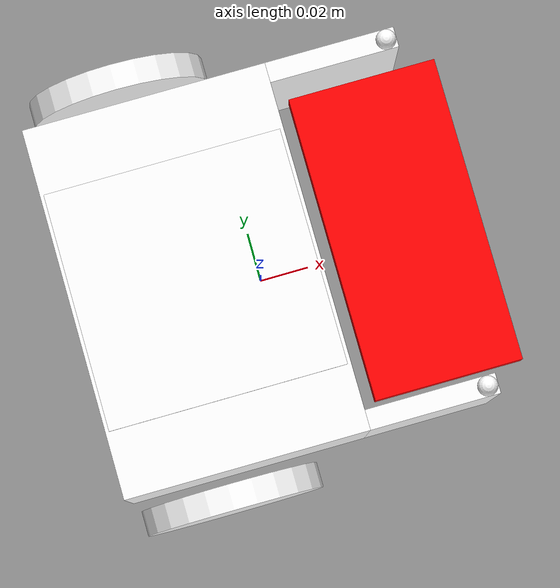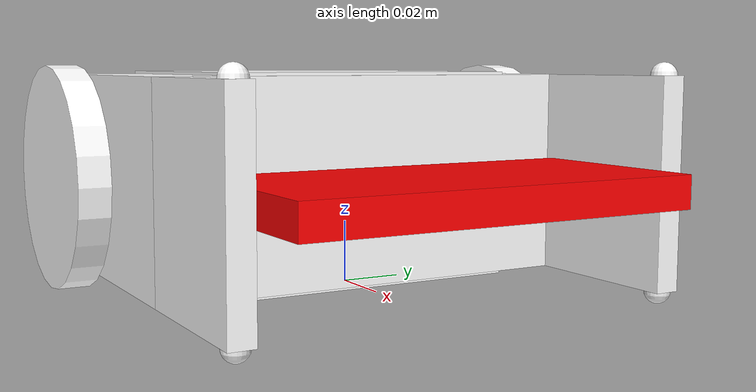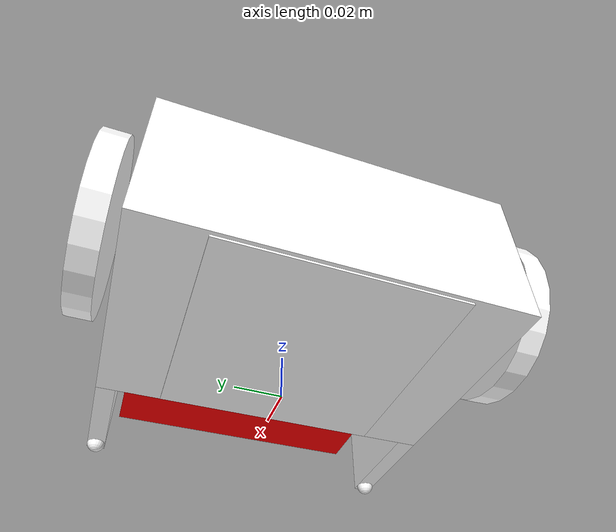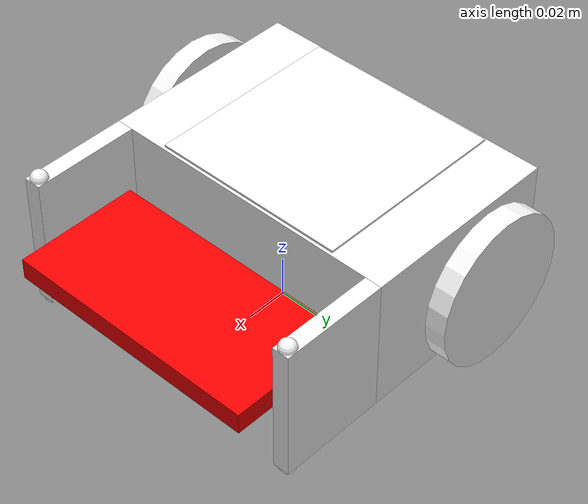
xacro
<?xml version="1.0"?>

<robot name="my_robot" xmlns:xacro="http://www.ros.org/wiki/xacro">

    <!--   Geometry and constants   -->

    <!-- Pi -->
    <xacro:property name="pi_const" value="3.14159265" />

    <!-- Body Dimensions -->
    <xacro:property name="a" value="0.0969" />
    <xacro:property name="b" value="0.065" />
    <xacro:property name="c" value="0.147" />
    <xacro:property name="baseframe_offset_y" value="-0.02575" />

    <!-- Wheel and caster radius -->
    <xacro:property name="r" value="0.0355" />

    <!-- Wheel width -->
    <xacro:property name="d" value="0.01" />

    <!-- Wheel Offset to chassis in Y axis -->
    <xacro:property name="wheel_offset_x" value="-0.00925" />
    <xacro:property name="wheel_offset_y" value="0.01" />

    <!-- AprilTag properties -->
    <xacro:property name="tag_size" value="0.094" />
    <xacro:property name="tag_thickness" value="0.001" />
    <xacro:property name="tag_mass" value="0.01" />
    <xacro:property name="tag_offset_y" value="0.0" />

    <!-- Weapon properties -->
    <xacro:property name="weapon_length" value="0.060" />
    <xacro:property name="weapon_width" value="0.124" />
    <xacro:property name="weapon_height" value="0.010" />
    <xacro:property name="weapon_offset_x" value="0.08495" />
    <xacro:property name="weapon_mass" value="0.1" />       <!-- Mass of weapon (kg) -->
    <xacro:property name="weapon_density" value="1430.0" /> <!-- Material density -->

    <xacro:property name="s1" value="${r}" />
    <xacro:property name="s2" value="${wheel_offset_x}" />
    <xacro:property name="s4" value="${c/2.0+wheel_offset_y}" />

    <!-- Upright support box dimensions (independently definable) -->
    <xacro:property name="support_width" value="0.0515" />      <!-- Width in X direction -->
    <xacro:property name="support_depth" value="0.008" />     <!-- Depth in Y direction -->
    <xacro:property name="support_height" value="0.065" />    <!-- Height in Z direction -->

    <!-- Caster ball properties -->
    <xacro:property name="caster_radius" value="${support_depth/2}" />    <!-- Radius of the ball casters -->
    <xacro:property name="caster_mass" value="0.005" />      <!-- Mass of each caster ball -->
    <xacro:property name="caster_offset" value="${support_height/2}" /> <!-- Position offset from box center -->

    <!--      Mass and inertia      -->

    <!-- Material Density -->
    <xacro:property name="d1" value="1430.0" />
    <xacro:property name="d2" value="1430.0" />
    <xacro:property name="d3" value="1430.0" />
    <xacro:property name="d4" value="1430.0" />  <!-- Density for caster balls -->
    <xacro:property name="d5" value="${weapon_density}" /> <!-- Density for weapon -->

    <!-- Mass -->
    <xacro:property name="m1" value="${d1*a*b*c}" />
    <xacro:property name="m2" value="${d2*pi_const*r*r*d}" />
    <xacro:property name="m3" value="${d3*support_width*support_depth*support_height}" />
    <xacro:property name="m4" value="${d4 * (4.0/3.0) * pi_const * caster_radius * caster_radius * caster_radius}" /> <!-- Mass of caster ball -->
    <xacro:property name="m5" value="${d5*weapon_length*weapon_width*weapon_height}" /> <!-- Mass of weapon -->

    <!-- Inertia -->
    <xacro:property name="Ix_body" value="${(1.0/12.0)*m1*(b*b+c*c)}" />
    <xacro:property name="Iy_body" value="${(1.0/12.0)*m1*(a*a+b*b)}" />
    <xacro:property name="Iz_body" value="${(1.0/12.0)*m1*(a*a+c*c)}" />
    <xacro:property name="Iz_wheel" value="${0.5*m2*r*r}" />
    <xacro:property name="I_wheel" value="${(1.0/12.0)*m2*(3.0*r*r+d*d)}" />

    <!-- Inertia for box support -->
    <xacro:property name="I_support_x" value="${(1.0/12.0)*m3*(support_depth*support_depth + support_height*support_height)}" />
    <xacro:property name="I_support_y" value="${(1.0/12.0)*m3*(support_width*support_width + support_height*support_height)}" />
    <xacro:property name="I_support_z" value="${(1.0/12.0)*m3*(support_width*support_width + support_depth*support_depth)}" />

    <!-- Inertia for caster ball (solid sphere) -->
    <xacro:property name="I_caster" value="${(2.0/5.0)*m4*caster_radius*caster_radius}" />

    <!-- Inertia for weapon (rectangular box) -->
    <xacro:property name="Ix_weapon" value="${(1.0/12.0)*m5*(weapon_width*weapon_width + weapon_height*weapon_height)}" />
    <xacro:property name="Iy_weapon" value="${(1.0/12.0)*m5*(weapon_length*weapon_length + weapon_height*weapon_height)}" />
    <xacro:property name="Iz_weapon" value="${(1.0/12.0)*m5*(weapon_length*weapon_length + weapon_width*weapon_width)}" />

    <!-- Complete inertia macros -->
    <xacro:macro name="inertia_body">
        <inertial>
            <origin rpy="0 0 0" xyz="0 0 ${s1}"/>
            <mass value="${m1}"/>
            <inertia ixx="${Ix_body}" ixy="0.0" ixz="0.0" iyy="${Iy_body}" iyz="0.0" izz="${Iz_body}" />
        </inertial>
    </xacro:macro>

    <xacro:macro name="inertia_wheel">
        <inertial>
            <origin rpy="${pi_const/2.0} 0 0" xyz="0 0 0"/>
            <mass value="${m2}"/>
            <inertia ixx="${I_wheel}" ixy="0.0" ixz="0.0" iyy="${I_wheel}" iyz="0.0" izz="${Iz_wheel}" />
        </inertial>
    </xacro:macro>

    <xacro:macro name="inertia_support">
        <inertial>
            <origin rpy="0 0 0" xyz="0 0 0"/>
            <mass value="${m3}"/>
            <inertia ixx="${I_support_x}" ixy="0.0" ixz="0.0" iyy="${I_support_y}" iyz="0.0" izz="${I_support_z}" />
        </inertial>
    </xacro:macro>

    <xacro:macro name="inertia_caster">
        <inertial>
            <origin rpy="0 0 0" xyz="0 0 0"/>
            <mass value="${m4}"/>
            <inertia ixx="${I_caster}" ixy="0.0" ixz="0.0" iyy="${I_caster}" iyz="0.0" izz="${I_caster}" />
        </inertial>
    </xacro:macro>

    <xacro:macro name="inertia_weapon">
        <inertial>
            <origin rpy="0 0 0" xyz="0 0 0"/>
            <mass value="${m5}"/>
            <inertia ixx="${Ix_weapon}" ixy="0.0" ixz="0.0" iyy="${Iy_weapon}" iyz="0.0" izz="${Iz_weapon}" />
        </inertial>
    </xacro:macro>

    <xacro:macro name="inertia_tag">
        <inertial>
            <origin rpy="0 0 0" xyz="0 0 0"/>
            <mass value="${tag_mass}"/>
            <inertia ixx="${(1.0/12.0)*tag_mass*(tag_size*tag_size + tag_thickness*tag_thickness)}"
                     ixy="0.0" ixz="0.0"
                     iyy="${(1.0/12.0)*tag_mass*(tag_size*tag_size + tag_thickness*tag_thickness)}"
                     iyz="0.0"
                     izz="${(1.0/12.0)*tag_mass*(tag_size*tag_size + tag_size*tag_size)}" />
        </inertial>
    </xacro:macro>

    <!-- Include gazebo file -->
    <xacro:include filename="$(find robot_description)/urdf/gazebo/robot.gazebo.xacro" />

    <!-- Links and joints -->
    <link name="base_footprint"> </link>
    <joint name="body_link_joint" type="fixed">
        <parent link="base_footprint"/>
        <child link="body_link"/>
        <origin xyz="${baseframe_offset_y} 0 0" rpy="0 0 0"/>
    </joint>

    <link name="body_link">
        <visual>
            <geometry><box size="${a} ${c} ${b}" /></geometry>
            <origin rpy="0 0 0" xyz="0 0 ${s1}"/>
            <material name="White"><color rgba="1 1 1 1"/></material>
        </visual>
        <collision>
            <geometry><box size="${a} ${c} ${b}" /></geometry>
            <origin rpy="0 0 0" xyz="0 0 ${s1}"/>
        </collision>
        <xacro:inertia_body/>
    </link>

    <!-- Weapon Link -->
    <joint name="weapon_joint" type="fixed">
        <parent link="body_link"/>
        <child link="weapon_link"/>
        <origin xyz="${weapon_offset_x} 0 ${s1}" rpy="0 0 0"/>
    </joint>
    <link name="weapon_link">
        <visual>
            <origin rpy="0 0 0" xyz="0 0 0"/>
            <geometry><box size="${weapon_length} ${weapon_width} ${weapon_height}"/></geometry>
            <material name="Red"><color rgba="1 0 0 1"/></material>
        </visual>
        <collision>
            <origin rpy="0 0 0" xyz="0 0 0"/>
            <geometry><box size="${weapon_length} ${weapon_width} ${weapon_height}"/></geometry>
        </collision>
        <xacro:inertia_weapon/>
    </link>

    <!-- Top AprilTag -->
    <joint name="top_tag_joint" type="fixed">
        <parent link="body_link"/>
        <child link="top_apriltag_link"/>
        <origin xyz="${tag_offset_y} 0 ${s1 + b/2 + tag_thickness/2}" rpy="0 0 0"/>
    </joint>
    <link name="top_apriltag_link">
        <visual>
            <origin rpy="0 0 0" xyz="0 0 0"/>
            <geometry><box size="${tag_size} ${tag_size} ${tag_thickness}"/></geometry>
            <material name="White"><color rgba="1 1 1 1"/></material>
        </visual>
        <collision>
            <origin rpy="0 0 0" xyz="0 0 0"/>
            <geometry><box size="${tag_size} ${tag_size} ${tag_thickness}"/></geometry>
        </collision>
        <xacro:inertia_tag/>
    </link>

    <!-- Top AprilTag Optical Frame -->
    <joint name="top_tag_optical_joint" type="fixed">
        <parent link="top_apriltag_link"/>
        <child link="top_apriltag_optical"/>
        <origin xyz="0 0 0" rpy="0 ${pi_const} ${pi_const/2}"/>
    </joint>
    <link name="top_apriltag_optical"/>

    <!-- Bottom AprilTag -->
    <joint name="bottom_tag_joint" type="fixed">
        <parent link="body_link"/>
        <child link="bottom_apriltag_link"/>
        <origin xyz="${tag_offset_y} 0 ${s1 - b/2 - tag_thickness/2}" rpy="${pi_const} 0 0"/>
    </joint>
    <link name="bottom_apriltag_link">
        <visual>
            <origin rpy="0 0 0" xyz="0 0 0"/>
            <geometry><box size="${tag_size} ${tag_size} ${tag_thickness}"/></geometry>
            <material name="White"><color rgba="1 1 1 1"/></material>
        </visual>
        <collision>
            <origin rpy="0 0 0" xyz="0 0 0"/>
            <geometry><box size="${tag_size} ${tag_size} ${tag_thickness}"/></geometry>
        </collision>
        <xacro:inertia_tag/>
    </link>

    <!-- Bottom AprilTag Optical Frame -->
    <joint name="bottom_tag_optical_joint" type="fixed">
        <parent link="bottom_apriltag_link"/>
        <child link="bottom_apriltag_optical"/>
        <origin xyz="0 0 0" rpy="0 0 ${pi_const/2}"/>
    </joint>
    <link name="bottom_apriltag_optical"/>

    <!-- Wheels -->
    <joint name="right_wheel_joint" type="continuous">
        <parent link="body_link"/>
        <child link="right_wheel_link"/>
        <origin xyz="${s2} ${-s4} ${r}" rpy="0 0 0"/>
        <axis xyz="0 1 0"/>
        <limit effort="50000" velocity="10"/>
        <dynamics damping="1.0" friction="1.0"/>
    </joint>
    <link name="right_wheel_link">
        <visual>
            <origin rpy="${pi_const/2} 0 0" xyz="0 0 0"/>
            <geometry><cylinder length="${d}" radius="${r}"/></geometry>
            <material name="White"><color rgba="1 1 1 1"/></material>
        </visual>
        <collision>
            <origin rpy="${pi_const/2} 0 0" xyz="0 0 0"/>
            <geometry><cylinder length="${d}" radius="${r}"/></geometry>
        </collision>
        <xacro:inertia_wheel/>
    </link>

    <joint name="left_wheel_joint" type="continuous">
        <parent link="body_link"/>
        <child link="left_wheel_link"/>
        <origin xyz="${s2} ${s4} ${r}" rpy="0 0 0"/>
        <axis xyz="0 1 0"/>
        <limit effort="50000" velocity="10"/>
        <dynamics damping="1.0" friction="1.0"/>
    </joint>
    <link name="left_wheel_link">
        <visual>
            <origin rpy="${pi_const/2} 0 0" xyz="0 0 0"/>
            <geometry><cylinder length="${d}" radius="${r}"/></geometry>
            <material name="White"><color rgba="1 1 1 1"/></material>
        </visual>
        <collision>
            <origin rpy="${pi_const/2} 0 0" xyz="0 0 0"/>
            <geometry><cylinder length="${d}" radius="${r}"/></geometry>
        </collision>
        <xacro:inertia_wheel/>
    </link>

    <!-- Two upright boxes with independently definable top/bottom casters -->
    <xacro:macro name="upright_with_casters" params="name y_offset">
        <!-- Upright box -->
        <joint name="${name}_joint" type="fixed">
            <parent link="body_link"/>
            <child link="${name}_link"/>
            <origin xyz="${a/2 + support_width/2} ${y_offset} ${r}" rpy="0 0 0"/>
        </joint>
        <link name="${name}_link">
            <visual>
                <origin rpy="0 0 0"/>
                <geometry><box size="${support_width} ${support_depth} ${support_height}"/></geometry>
                <material name="White"><color rgba="1 1 1 1"/></material>
            </visual>
            <collision>
                <origin rpy="0 0 0"/>
                <geometry><box size="${support_width} ${support_depth} ${support_height}"/></geometry>
            </collision>
            <xacro:inertia_support/>
        </link>

        <!-- Top caster ball -->
        <joint name="${name}_top_caster_joint" type="fixed">
            <parent link="${name}_link"/>
            <child link="${name}_top_caster_link"/>
            <origin xyz="${support_width/2-caster_radius} 0 ${caster_offset}" rpy="0 0 0"/>
        </joint>
        <link name="${name}_top_caster_link">
            <visual>
                <origin rpy="0 0 0"/>
                <geometry><sphere radius="${caster_radius}"/></geometry>
                <material name="White"><color rgba="1 1 1 1"/></material>
            </visual>
            <collision>
                <origin rpy="0 0 0"/>
                <geometry><sphere radius="${caster_radius}"/></geometry>
            </collision>
            <xacro:inertia_caster/>
        </link>

        <!-- Bottom caster ball -->
        <joint name="${name}_bottom_caster_joint" type="fixed">
            <parent link="${name}_link"/>
            <child link="${name}_bottom_caster_link"/>
            <origin xyz="${support_width/2-caster_radius} 0 ${-caster_offset}" rpy="0 0 0"/>
        </joint>
        <link name="${name}_bottom_caster_link">
            <visual>
                <origin rpy="0 0 0"/>
                <geometry><sphere radius="${caster_radius}"/></geometry>
                <material name="White"><color rgba="1 1 1 1"/></material>
            </visual>
            <collision>
                <origin rpy="0 0 0"/>
                <geometry><sphere radius="${caster_radius}"/></geometry>
            </collision>
            <xacro:inertia_caster/>
        </link>
    </xacro:macro>

    <xacro:upright_with_casters name="front_left_support" y_offset="${c/2 - support_depth/2}"/>
    <xacro:upright_with_casters name="front_right_support" y_offset="${-c/2 + support_depth/2}"/>

</robot>
